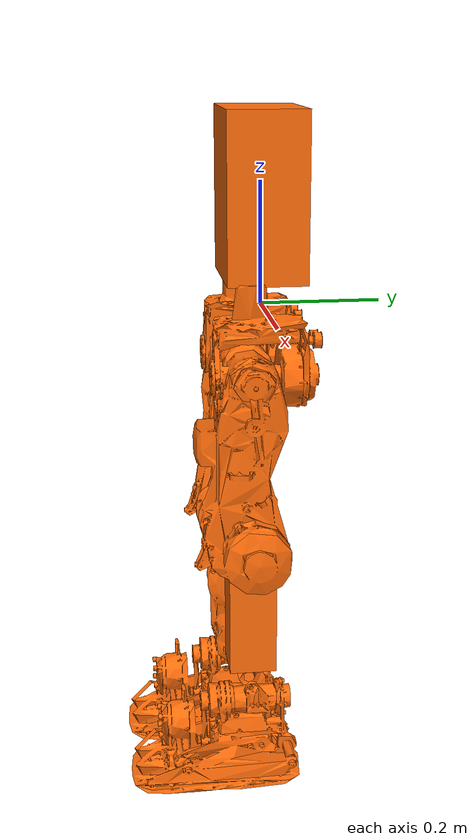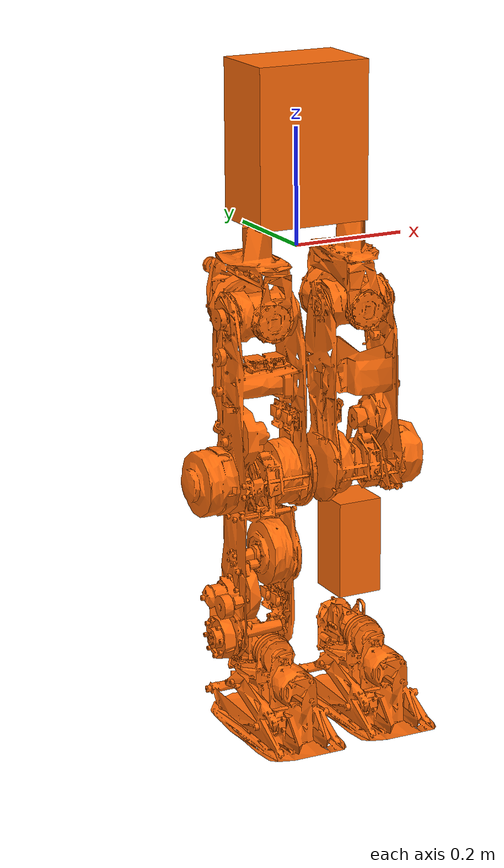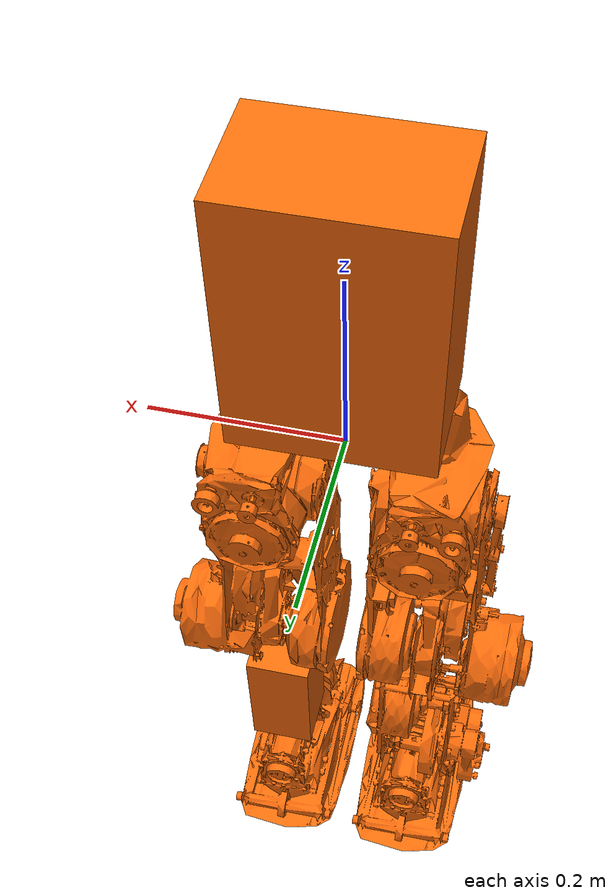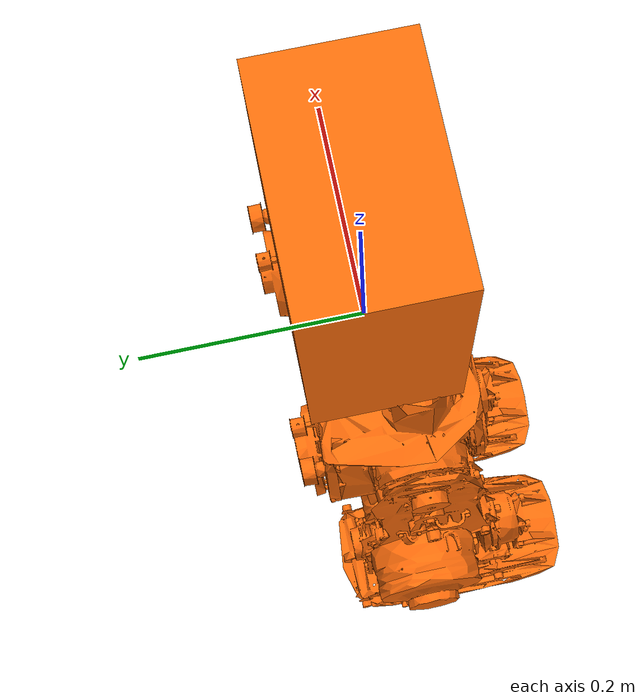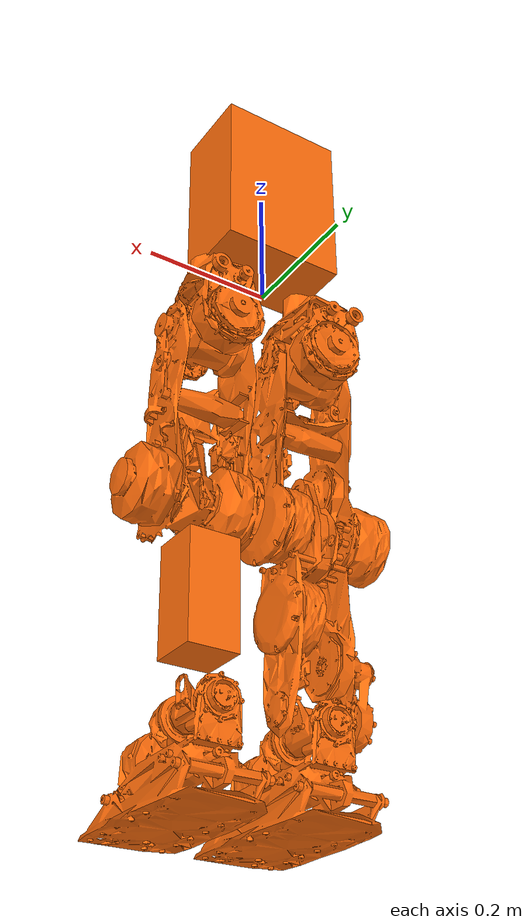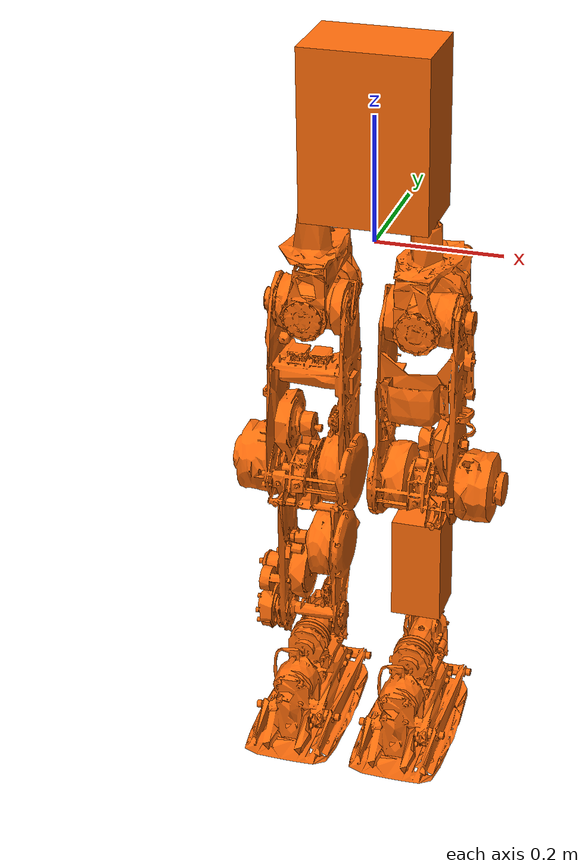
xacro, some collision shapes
<?xml version="1.0" ?>

<robot name="AR-600" xmlns:xacro="http://www.ros.org/wiki/xacro">

<!-- Start - Include -->
  <xacro:include filename="$(find a600_description)/xacro/links_joints_macro.xacro"/>
  <xacro:include filename="$(find a600_description)/xacro/a600_links_description.xacro"/>

  <xacro:include filename="$(find a600_description)/xacro/plugin.gazebo"/>

  <!-- Constants value-->
<xacro:property name="PI" value="3.1415926535897931"/>
<xacro:property name="lower_angle" value="-1.04719755"/>
<xacro:property name="upper_angle" value="1.04719755"/>
<!-- velocity value-->
<xacro:property name="angular_velocity_hip" value="2.5"/>
<xacro:property name="angular_velocity_knee" value="5.8"/>
<xacro:property name="angular_velocity_foot" value="3.4"/>

<!-- Efforts value-->
<xacro:property name="HipR_max_effort" value="60.0"/>
<xacro:property name="HipS_max_effort" value="250.0"/>
<xacro:property name="HipF_max_effort" value="250.0"/>
<xacro:property name="Knee_max_effort" value="220.0"/>
<xacro:property name="FootF_max_effort" value="60.0"/>
<xacro:property name="FootS_max_effort" value="60.0"/>
<!-- Foot pid value-->
<xacro:property name="ground_kp"  value="1000000.0" />
<xacro:property name="ground_kd"  value="10000.0" />
<xacro:property name="ground_mu1"  value="1.5" />
<xacro:property name="ground_mu2"  value="1.5" />
<!-- Friction damping value-->
<xacro:property name="leg_joint_damping"  value="0.1" />
<xacro:property name="leg_joint_friction"  value="10" />

<!-- Joint decription-->

<revolute_joint name="R_HipR"
        origin_rpy="1.5708 0 0"
        origin_xyz="-0.088 -0.027645 0"
        parent="base_link" child="R_HipR"
        limit_e="${HipR_max_effort}" limit_l="-0.175" limit_u="0.175" limit_v="${angular_velocity_hip}"
        joint_damping ="${leg_joint_damping}"  joint_friction ="${leg_joint_friction}"
        axis_xyz="0 1 0" />

<revolute_joint name="R_HipS"
        origin_xyz="0 -0.102 0"
        origin_rpy="3.1416 0 3.1416"
        parent="R_HipR" child="R_HipS"
        limit_e="${HipS_max_effort}" limit_l="-0.192" limit_u="0.314" limit_v="${angular_velocity_hip}"
        joint_damping ="${leg_joint_damping}"  joint_friction ="${leg_joint_friction}"
        axis_xyz="0 0 1" />

<revolute_joint name="R_HipF"
        origin_xyz="0 0 0"
        origin_rpy="0 0 0"
        parent="R_HipS" child="R_Knee_Upper"
        limit_e="${HipF_max_effort}" limit_l="-1.047" limit_u="0.698" limit_v="${angular_velocity_hip}"
        joint_damping ="${leg_joint_damping}"  joint_friction ="${leg_joint_friction}"
        axis_xyz="1 0 0" />

<revolute_joint name="R_Knee"
        origin_xyz="0 -0.28 0"
        origin_rpy="3.1416 0 3.1416"
        parent="R_Knee_Upper" child="R_Knee_Lower"
        limit_e="${Knee_max_effort}" limit_l="-0.087" limit_u="1.571" limit_v="${angular_velocity_knee}"
        joint_damping ="${leg_joint_damping}"  joint_friction ="${leg_joint_friction}"
        axis_xyz="1 0 0" />

<revolute_joint name="R_FootF"
        origin_xyz="0 -0.277 0.0"
        origin_rpy="3.1416 0 0"
        parent="R_Knee_Lower" child="R_FootR"
        limit_e="${FootF_max_effort}" limit_l="-1.047" limit_u="0.559" limit_v="${angular_velocity_foot}"
        joint_damping ="${leg_joint_damping}"  joint_friction ="${leg_joint_friction}"
        axis_xyz="1 0 0"   />

<revolute_joint name="R_FootS"
        origin_xyz="0 0.030 0"
        origin_rpy="0 0 0"
        parent="R_FootR" child="R_FootS"
        limit_e="${FootS_max_effort}" limit_l="-0.297" limit_u="0.297" limit_v="${angular_velocity_foot}"
        joint_damping ="${leg_joint_damping}"  joint_friction ="${leg_joint_friction}"
        axis_xyz="0 0 1"  />

<!--Left leg -->
<revolute_joint name="L_HipR"
        origin_xyz="0.088 -0.027645 0"
        origin_rpy="1.5708 0 0"
        parent="base_link" child="L_HipR"
        limit_e="${HipR_max_effort}" limit_l="-0.175" limit_u="0.175" limit_v="${angular_velocity_hip}"
        joint_damping ="${leg_joint_damping}"  joint_friction ="${leg_joint_friction}"
        axis_xyz="0 1 0"  />

<revolute_joint name="L_HipS"
        origin_xyz="0 -0.102 0"
        origin_rpy="0 0 0"
        parent="L_HipR" child="L_HipS"
        limit_e="${HipS_max_effort}" limit_l="-0.314" limit_u="0.192" limit_v="${angular_velocity_hip}"
        joint_damping ="${leg_joint_damping}"  joint_friction ="${leg_joint_friction}"
        axis_xyz="0 0 1"  />

<revolute_joint name="L_HipF"
        origin_xyz="0 0 0"
        origin_rpy="0 0 0"
        parent="L_HipS" child="L_Knee_upper"
        limit_e="${HipF_max_effort}" limit_l="-1.047" limit_u="0.698" limit_v="${angular_velocity_hip}"
        joint_damping ="${leg_joint_damping}"  joint_friction ="${leg_joint_friction}"
        axis_xyz="1 0 0"  />

<revolute_joint name="L_Knee"
      origin_xyz="0 -0.28 0"
      origin_rpy="0 0 0"
        parent="L_Knee_upper" child="L_Knee_Lower"
        limit_e="${Knee_max_effort}" limit_l="-0.087" limit_u="1.571" limit_v="${angular_velocity_knee}"
        joint_damping ="${leg_joint_damping}"  joint_friction ="${leg_joint_friction}"
        axis_xyz="1 0 0"  />

<revolute_joint name="L_FootF"
      origin_xyz="0 -0.277 0"
      origin_rpy="3.1416 0 0"
        parent="L_Knee_Lower" child="L_FootR"
        limit_e="${FootF_max_effort}" limit_l="-1.047" limit_u="0.559" limit_v="${angular_velocity_foot}"
        joint_damping ="${leg_joint_damping}"  joint_friction ="${leg_joint_friction}"
        axis_xyz="1 0 0"  />

<revolute_joint name="L_FootS"
      origin_xyz="0.0 0.030 0"
      origin_rpy="0 0 0"
        parent="L_FootR" child="L_FootS"
        limit_e="${FootS_max_effort}" limit_l="-0.297" limit_u="0.297" limit_v="${angular_velocity_foot}"
        joint_damping ="${leg_joint_damping}"  joint_friction ="${leg_joint_friction}"
        axis_xyz="0 0 1"  />

</robot>

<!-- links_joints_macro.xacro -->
<robot xmlns:xacro="http://www.ros.org/wiki/xacro">

  <!-- Link description -->
  <xacro:macro name="link_stl" params="name color origin_xyz origin_rpy mass ixx iyy izz">
    <link name="${name}">
      <inertial>
        <mass value="${mass}" />
        <origin rpy="${origin_rpy}" xyz="${origin_xyz}" />
        <inertia ixx="${ixx}" ixy="0.0" ixz="0.0" iyy="${iyy}" iyz="0.0" izz="${izz}" />
      </inertial>
      <collision>
        <origin rpy="0 0 0" xyz="0 0 0" />
          <geometry>
            <mesh filename="package://a600_description/meshes_light/${name}.STL" />
          </geometry>
      </collision>
      <visual>
        <origin rpy="0 0 0" xyz="0 0 0" />
        <geometry>
            <mesh filename="package://a600_description/meshes_light/${name}.STL" />
        </geometry>
          <material name="${color}"/>
      </visual>
    </link>
  </xacro:macro>

   <!-- Link description with colision box-->
  <xacro:macro name="link_stl_box" params="name color origin_xyz origin_rpy collision_rpy collision_xyz box_size mass ixx iyy izz">
    <link name="${name}">
      <inertial>
        <mass value="${mass}" />
        <origin rpy="${origin_rpy}" xyz="${origin_xyz}" />
        <inertia ixx="${ixx}" ixy="0.0" ixz="0.0" iyy="${iyy}" iyz="0.0" izz="${izz}" />
      </inertial>
      <collision>
        <origin rpy="${collision_rpy}" xyz="${collision_xyz}" />
          <geometry>
          <box size="${box_size}"/>
          </geometry>
      </collision>
      <visual>
        <origin rpy="0 0 0" xyz="0 0 0" />
        <geometry>
            <mesh filename="package://a600_description/meshes_light/${name}.STL" />
        </geometry>
          <material name="${color}"/>
      </visual>
    </link>
  </xacro:macro>

 <!-- Joint description -->
  <xacro:macro name="revolute_joint" params="name axis_xyz origin_rpy origin_xyz parent child limit_e limit_l limit_u limit_v joint_damping joint_friction ">
    <joint name="${name}" type="revolute" >
      <axis xyz="${axis_xyz}" />
      <limit effort="${limit_e}" lower="${limit_l}" upper="${limit_u}" velocity="${limit_v}" />
      <origin rpy="${origin_rpy}" xyz="${origin_xyz}" />
      <parent link="${parent}" />
      <child link="${child}" />
      <dynamics damping="${joint_damping}" friction="${joint_friction}" />
    </joint>

    <!-- transmission -->
    <transmission name="trans_${name}">
      <type>transmission_interface/SimpleTransmission</type>
      <joint name="${name}">
        <hardwareInterface>hardware_interface/EffortJointInterface</hardwareInterface>
      </joint>
      <actuator name="motor_${name}">
        <hardwareInterface>hardware_interface/EffortJointInterface</hardwareInterface>
        <mechanicalReduction>1</mechanicalReduction>
      </actuator>
    </transmission>
  </xacro:macro>

 <!-- Joint description -->
  <xacro:macro name="fixed_joint" params="name axis_xyz origin_rpy origin_xyz parent child limit_e limit_l limit_u limit_v joint_damping joint_friction ">
    <joint name="${name}" type="fixed" >
      <axis xyz="${axis_xyz}" />
      <limit effort="${limit_e}" lower="${limit_l}" upper="${limit_u}" velocity="${limit_v}" />
      <origin rpy="${origin_rpy}" xyz="${origin_xyz}" />
      <parent link="${parent}" />
      <child link="${child}" />
      <dynamics damping="${joint_damping}" friction="${joint_friction}" />
    </joint>
  </xacro:macro>

<!-- Color -->

 <material name="black">
    <color rgba="0.0 0.0 0.0 1.0"/>
  </material>

  <material name="blue">
    <color rgba="0.0 0.0 0.8 1.0"/>
  </material>

  <material name="green">
    <color rgba="0.0 0.8 0.0 1.0"/>
  </material>

  <material name="grey">
    <color rgba="0.2 0.2 0.2 1.0"/>
  </material>

  <material name="orange">
    <color rgba="${255/255} ${108/255} ${10/255} 1.0"/>
  </material>

  <material name="brown">
    <color rgba="${222/255} ${207/255} ${195/255} 1.0"/>
  </material>

  <material name="red">
    <color rgba="0.8 0.0 0.0 1.0"/>
  </material>

  <material name="white">
    <color rgba="1.0 1.0 1.0 1.0"/>
  </material>

</robot>
